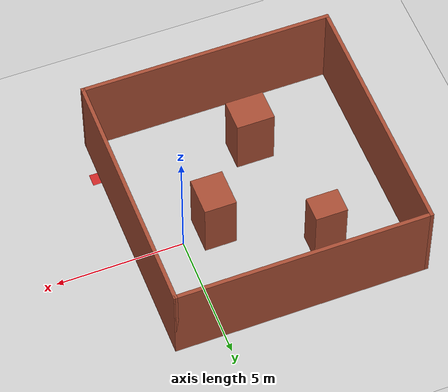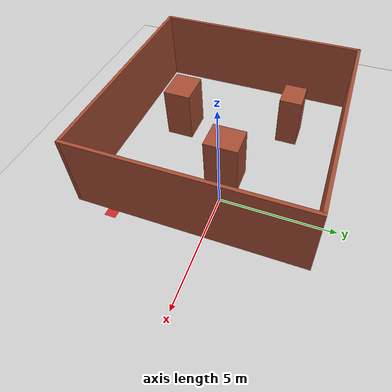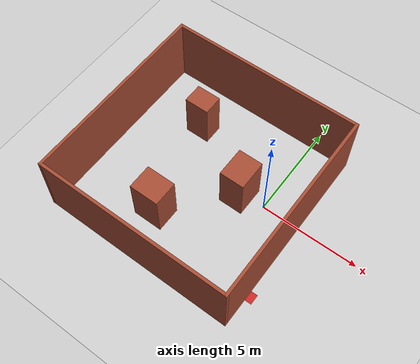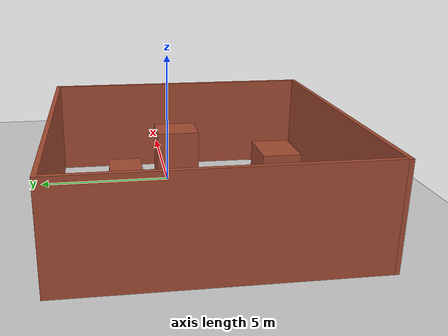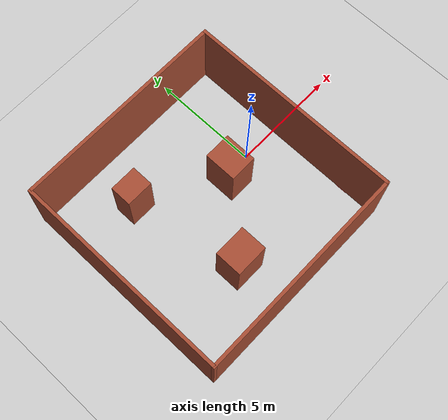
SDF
<?xml version="1.0" ?>
<sdf version="1.5">
  <world name="default">
    <!-- A global light source -->
    <include>
      <uri>model://sun</uri>
    </include>
    <!-- A ground plane -->
    <include>
      <uri>model://ground_plane</uri>
    </include>
    <include>
      <uri>model://house_6</uri>
    </include>

  <model name="finish_box">
    <link name="link">
      <pose>2 -4 0 0 0 0</pose>

      <collision name="box_collision">
      <geometry>
      <box>
      <size>0.5 0.5 0.0001</size>
      </box>
      </geometry>
      </collision>

      <visual name="visual">
        <geometry>
          <box>
            <size>0.5 0.5 0.0001</size>
          </box>
        </geometry>
        <material>
            <script>
            <uri>file://media/materials/scripts/gazebo.material</uri>
            <name>Gazebo/Red</name>
          </script>
        </material>
      </visual>
    </link>
    <static>1</static>
  </model>

    <physics type='ode'>
      <max_step_size>0.01</max_step_size>
      <real_time_factor>1</real_time_factor>
      <real_time_update_rate>100</real_time_update_rate>
      <gravity>0 0 -9.8</gravity>
    </physics>
  </world>
</sdf>

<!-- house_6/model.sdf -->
<sdf version='1.5'>
  <model name='house_6'>
    <pose frame=''>-3.086 -0.702 0 0 -0 0</pose>
    <link name='Wall_10'>
      <collision name='Wall_10_Collision'>
        <geometry>
          <box>
            <size>1.5 1.25 2.5</size>
          </box>
        </geometry>
        <pose frame=''>0 0 1.25 0 -0 0</pose>
      </collision>
      <visual name='Wall_10_Visual'>
        <pose frame=''>0 0 1.25 0 -0 0</pose>
        <geometry>
          <box>
            <size>1.5 1.25 2.5</size>
          </box>
        </geometry>
        <material>
          <script>
            <uri>file://media/materials/scripts/gazebo.material</uri>
            <name>Gazebo/Bricks</name>
          </script>
          <ambient>1 1 1 1</ambient>
        </material>
      </visual>
      <pose frame=''>1.80293 0.523428 0 0 0 -1.5708</pose>
    </link>
    <link name='Wall_12'>
      <collision name='Wall_12_Collision'>
        <geometry>
          <box>
            <size>1.5 1.25 2.5</size>
          </box>
        </geometry>
        <pose frame=''>0 0 1.25 0 -0 0</pose>
      </collision>
      <visual name='Wall_12_Visual'>
        <pose frame=''>0 0 1.25 0 -0 0</pose>
        <geometry>
          <box>
            <size>1.5 1.25 2.5</size>
          </box>
        </geometry>
        <material>
          <script>
            <uri>file://media/materials/scripts/gazebo.material</uri>
            <name>Gazebo/Bricks</name>
          </script>
          <ambient>1 1 1 1</ambient>
        </material>
      </visual>
      <pose frame=''>-0.821768 -2.49349 0 0 -0 3.14159</pose>
    </link>
    <link name='Wall_3'>
      <collision name='Wall_3_Collision'>
        <geometry>
          <box>
            <size>10 0.15 3.5</size>
          </box>
        </geometry>
        <pose frame=''>0 0 1.75 0 -0 0</pose>
      </collision>
      <visual name='Wall_3_Visual'>
        <pose frame=''>0 0 1.75 0 -0 0</pose>
        <geometry>
          <box>
            <size>10 0.15 3.5</size>
          </box>
        </geometry>
        <material>
          <script>
            <uri>file://media/materials/scripts/gazebo.material</uri>
            <name>Gazebo/Bricks</name>
          </script>
          <ambient>1 1 1 1</ambient>
        </material>
      </visual>
      <pose frame=''>-0 4.925 0 0 -0 0</pose>
    </link>
    <link name='Wall_4'>
      <collision name='Wall_4_Collision'>
        <geometry>
          <box>
            <size>10 0.15 3.5</size>
          </box>
        </geometry>
        <pose frame=''>0 0 1.75 0 -0 0</pose>
      </collision>
      <visual name='Wall_4_Visual'>
        <pose frame=''>0 0 1.75 0 -0 0</pose>
        <geometry>
          <box>
            <size>10 0.15 3.5</size>
          </box>
        </geometry>
        <material>
          <script>
            <uri>file://media/materials/scripts/gazebo.material</uri>
            <name>Gazebo/Bricks</name>
          </script>
          <ambient>1 1 1 1</ambient>
        </material>
      </visual>
      <pose frame=''>4.925 0 0 0 0 -1.5708</pose>
    </link>
    <link name='Wall_5'>
      <collision name='Wall_5_Collision'>
        <geometry>
          <box>
            <size>10 0.15 3.5</size>
          </box>
        </geometry>
        <pose frame=''>0 0 1.75 0 -0 0</pose>
      </collision>
      <visual name='Wall_5_Visual'>
        <pose frame=''>0 0 1.75 0 -0 0</pose>
        <geometry>
          <box>
            <size>10 0.15 3.5</size>
          </box>
        </geometry>
        <material>
          <script>
            <uri>file://media/materials/scripts/gazebo.material</uri>
            <name>Gazebo/Bricks</name>
          </script>
          <ambient>1 1 1 1</ambient>
        </material>
      </visual>
      <pose frame=''>-0 -4.925 0 0 -0 3.14159</pose>
    </link>
    <link name='Wall_6'>
      <collision name='Wall_6_Collision'>
        <geometry>
          <box>
            <size>10 0.15 3.5</size>
          </box>
        </geometry>
        <pose frame=''>0 0 1.75 0 -0 0</pose>
      </collision>
      <visual name='Wall_6_Visual'>
        <pose frame=''>0 0 1.75 0 -0 0</pose>
        <geometry>
          <box>
            <size>10 0.15 3.5</size>
          </box>
        </geometry>
        <material>
          <script>
            <uri>file://media/materials/scripts/gazebo.material</uri>
            <name>Gazebo/Bricks</name>
          </script>
          <ambient>1 1 1 1</ambient>
        </material>
      </visual>
      <pose frame=''>-4.925 0 0 0 -0 1.5708</pose>
    </link>
    <link name='Wall_8'>
      <collision name='Wall_8_Collision'>
        <geometry>
          <box>
            <size>1.25 1 2.5</size>
          </box>
        </geometry>
        <pose frame=''>0 0 1.25 0 -0 0</pose>
      </collision>
      <visual name='Wall_8_Visual'>
        <pose frame=''>0 0 1.25 0 -0 0</pose>
        <geometry>
          <box>
            <size>1.25 1 2.5</size>
          </box>
        </geometry>
        <material>
          <script>
            <uri>file://media/materials/scripts/gazebo.material</uri>
            <name>Gazebo/Bricks</name>
          </script>
          <ambient>1 1 1 1</ambient>
        </material>
      </visual>
      <pose frame=''>-1.86686 2.54875 0 0 -0 0</pose>
    </link>
    <static>1</static>
  </model>
</sdf>
